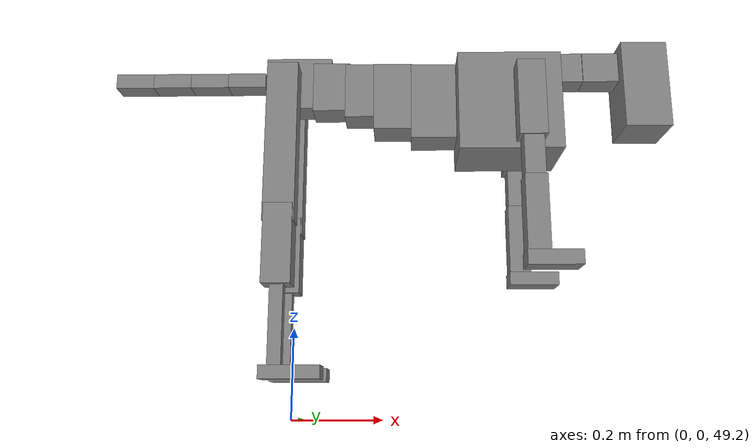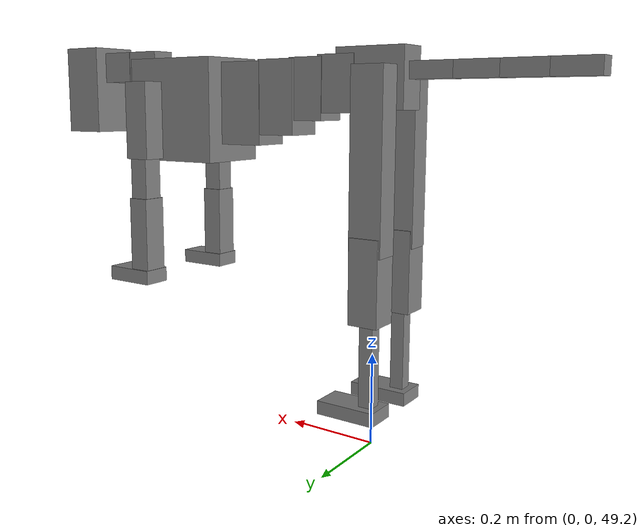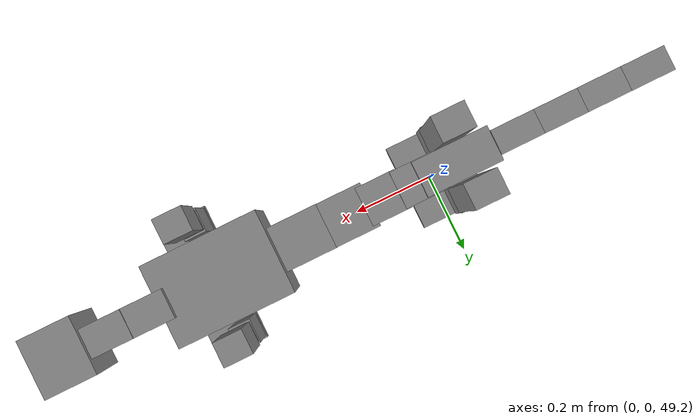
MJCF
<mujoco model="dog">

    <default>
        <joint armature="0.02" stiffness="1" damping="0.2" limited="true"/>
        <geom condim="3" friction="1 0.05 0.05" margin="0.01"/>
        <motor ctrllimited="true" ctrlrange="-1.0 1.0" forcelimited="true" gear="50"/>
    </default>

    <compiler inertiafromgeom="true" angle="radian"/>

    <option timestep="0.016" iterations="50" tolerance="1e-10" solver="Newton" jacobian="dense" cone="pyramidal"/>

    <size nconmax="20000" njmax="60000" nstack="5000000"/>
    <visual>
        <map force="0.1" zfar="30"/>
        <rgba haze="0.15 0.25 0.35 1"/>
        <quality shadowsize="2048"/>
        <global offwidth="800" offheight="800"/>
    </visual>

    <asset>
        <texture type="skybox" builtin="gradient" rgb1="0.3 0.5 0.7" rgb2="0 0 0" width="512" height="512"/>
        <texture name="texplane" type="2d" builtin="checker" rgb1=".2 .3 .4" rgb2=".1 0.15 0.2" width="512" height="512"
                 mark="cross" markrgb=".8 .8 .8"/>
        <texture name="texgeom" type="cube" builtin="flat" mark="cross" width="127" height="1278" rgb1="0.8 0.6 0.4"
                 rgb2="0.8 0.6 0.4" markrgb="1 1 1" random="0.01"/>

        <material name="matplane" reflectance="0.3" texture="texplane" texrepeat="1 1" texuniform="true"/>
        <material name="matgeom" texture="texgeom" texuniform="true" rgba="0.8 0.6 .4 1"/>
    </asset>

    <worldbody>
        <geom name="floor" pos="0 0 0" size="0 0 .25" type="plane" material="matplane" condim="3"/>

        <light directional="false" diffuse=".2 .2 .2" specular="0 0 0" pos="0 0 5" dir="0 0 -1" castshadow="false"/>
        <light mode="targetbodycom" target="torso" directional="false" diffuse=".8 .8 .8" specular="0.3 0.3 0.3"
               pos="0 0 4.0" dir="0 0 -1"/>

        <body name="root" pos="0 0 50">
            <freejoint name="root_1"/>
            <geom type="box" pos="0 0 -0.02" size="0.0774  0.0358  0.063" density="2030"/>

            <body name="spine1" pos="0.054 0 0">
                <joint name="spine1_y" axis="0 1 0" range="0 0.7" limited="true"/>
                <geom type="box" pos="0.02375 0 -0.03" size="0.04375  0.0375  0.05985" density="2030"/>

                <body name="spine2" pos="0.0612 0 0">
                    <joint name="spine2_y" axis="0 1 0" range="-0.15 0.15" limited="true"/>
                    <geom type="box" pos="0.03555  0  -0.04" size="0.04055  0.039  0.06615" density="2030"/>

                    <body name="spine3" pos="0.0730 0 0">
                        <joint name="spine3_y" axis="0 1 0" range="-0.15 0.15" limited="true"/>
                        <geom type="box" pos="0.03555  0  -0.057" size="0.04555  0.0445  0.081" density="2030"/>

                        <body name="spine4" pos="0.0780 0 0">
                            <joint name="spine4_y" axis="0 1 0" range="-0.15 0.15" limited="true"/>
                            <geom type="box" pos="0.05265  0  -0.07" size="0.05265  0.045  0.09135" density="2030"/>

                            <body name="torso" pos="0.1082 0 0">
                                <joint name="torso_y" axis="0 1 0" range="-0.15 0.15" limited="true"/>
                                <geom type="box" pos="0.11925  0  -0.085" size="0.11925  0.085  0.11745"
                                      density="2030"/>

                                <body name="neck1" pos="0.2160  0   0.0180">
                                    <joint name="neck1_y" axis="0 1 0" range="-1.2  -1" limited="true"/>
                                    <geom type="box" pos="0.0423  0  0" size="0.0423  0.03  0.036" density="2325"/>

                                    <body name="neck2" pos="0.0853  0  0">
                                        <joint name="neck2_y" axis="0 1 0" range="0.1  0" limited="true"/>
                                        <geom type="box" pos="0.0423  0  0" size="0.0423  0.03  0.036" density="2325"/>

                                        <body name="head" pos="0.0853  0  0">
                                            <joint name="head_y" axis="0 1 0" range="-0.3  -0.2" limited="true"/>
                                            <geom type="box" pos="0.0531  0  -0.055" size="0.0531  0.06  0.1044"
                                                  density="4030"/>

                                        </body>
                                    </body>
                                </body>

                                <body name="front_shoulder" pos="0.156  0   -0.0480">
                                    <joint name="front_shoulder_y" axis="0 1 0" range="-1 1.5" limited="true"/>
                                    <geom type="box" pos="0 0.13 -0.0605" size="0.0309  0.0264  0.0872" density="1158"/>
                                    <geom type="box" pos="0 -0.13 -0.0605" size="0.0309  0.0264  0.0872"
                                          density="1158"/>

                                    <body name="front_elbow" pos="0  0  -0.1210">
                                        <joint name="front_elbow_y" axis="0 1 0" range="-2 0" limited="true"/>
                                        <geom type="box" pos="0 0.13 -0.0652" size="0.0225  0.0230  0.0652"
                                              density="1081"/>
                                        <geom type="box" pos="0 -0.13 -0.0652" size="0.0225  0.0230  0.0652"
                                              density="1081"/>

                                        <body name="front_wrist" pos="0  0  -0.1304">
                                            <joint name="front_wrist_y" axis="0 1 0" range="-0.2 0" limited="true"/>
                                            <geom type="box" pos="0 0.13 -0.0841" size="0.0249  0.0277  0.0972"
                                                  density="1664"/>
                                            <geom type="box" pos="0 -0.13 -0.0841" size="0.0249  0.0277  0.0972"
                                                  density="1664"/>

                                            <body name="front_finger_end" pos="0  0  -0.1681">
                                                <joint name="front_finger_y" axis="0 1 0" range="-0.4 1"
                                                       limited="true"/>
                                                <geom type="box" pos="0.0321  0.13  -0.0012"
                                                      size="0.0588  0.0321  0.0162" density="1515"/>
                                                <geom type="box" pos="0.0321  -0.13  -0.0012"
                                                      size="0.0588  0.0321  0.0162" density="1515"/>

                                            </body>

                                        </body>
                                    </body>
                                </body>

                            </body>
                        </body>
                    </body>
                </body>
            </body>

            <body name="back_hip" pos="-0.03 0 -0.018">
                <joint name="back_hip_y" axis="0 1 0" range="-1.5 0.3" limited="true"/>
                <geom type="box" pos="0 0.07 -0.1651" size="0.0356  0.0279  0.1879" density="1154"/>
                <geom type="box" pos="0 -0.07 -0.1651" size="0.0356  0.0279  0.1879" density="1154"/>

                <body name="back_knee" pos="0  0  -0.3302">
                    <joint name="back_knee_y" axis="0 1 0" range="0 2.8" limited="true"/>
                    <geom type="box" pos="0 0.07 -0.0740" size="0.0325  0.0321  0.0895" density="1227"/>
                    <geom type="box" pos="0 -0.07 -0.0740" size="0.0325  0.0321  0.0895" density="1227"/>

                    <body name="back_ankle" pos="0  0  -0.1480">
                        <joint name="back_ankle_y" axis="0 1 0" range="-2.2 0" limited="true"/>
                        <geom type="box" pos="0 0.07 -0.1023" size="0.0150  0.0150  0.1135" density="1284"/>
                        <geom type="box" pos="0 -0.07 -0.1023" size="0.0150  0.0150  0.1135" density="1284"/>

                        <body name="back_toe_end" pos="0  0  -0.2046">
                            <joint name="back_toe_y" axis="0 1 0" range="-0.4 1" limited="true"/>
                            <geom type="box" pos="0.0357  0.07  0.0005" size="0.0654  0.0357  0.0145" density="1515"/>
                            <geom type="box" pos="0.0357  -0.07  0.0005" size="0.0654  0.0357  0.0145" density="1515"/>

                        </body>
                    </body>
                </body>
            </body>

            <body name="tail1" pos="-0.074 0 -0.006">
                <joint name="tail1_y" axis="0 1 0" range="-0.2 0.2" limited="true"/>
                <geom type="box" pos="-0.0536  0  0" size="0.045  0.025  0.0175" density="1587"/>

                <body name="tail2" pos="-0.09 0 0">
                    <joint name="tail2_y" axis="0 1 0" range="-0.2 0.2" limited="true"/>
                    <geom type="box" pos="-0.0536  0  0" size="0.045  0.025  0.0175" density="1587"/>

                    <body name="tail3" pos="-0.09 0 0">
                        <joint name="tail3_y" axis="0 1 0" range="-0.2 0.2" limited="true"/>
                        <geom type="box" pos="-0.0536  0  0" size="0.045  0.025  0.0175" density="1587"/>

                        <body name="tail4" pos="-0.09 0 0">
                            <joint name="tail4_y" axis="0 1 0" range="-0.2 0.2" limited="true"/>
                            <geom type="box" pos="-0.0536  0  0" size="0.045  0.025  0.0175" density="1587"/>

                        </body>
                    </body>
                </body>
            </body>
        </body>
    </worldbody>

    <actuator>
        <motor joint="spine1_y" forcerange="-150 150     "/>
        <motor joint="spine2_y" forcerange="-150 150     "/>
        <motor joint="spine3_y" forcerange="-150 150     "/>
        <motor joint="spine4_y" forcerange="-150 150     "/>
        <motor joint="torso_y" forcerange="-150 150     "/>
        <motor joint="neck1_y" forcerange="-100 100       "/>
        <motor joint="neck2_y" forcerange="-100 100       "/>
        <motor joint="head_y" forcerange="-150 150       "/>
        <motor joint="front_shoulder_y" forcerange="-161.87 114.32"/>
        <motor joint="front_elbow_y" forcerange="-112.85 154.12"/>
        <motor joint="front_wrist_y" forcerange="-88.97 132.72"/>
        <motor joint="front_finger_y" forcerange="-79.98 51.02"/>
        <motor joint="back_hip_y" forcerange="-314.60 257.52"/>
        <motor joint="back_knee_y" forcerange="-268.75 397.63"/>
        <motor joint="back_angle_y" forcerange="-75.28 64.56"/>
        <motor joint="back_toe_y" forcerange="-139.72 65.63"/>
        <motor joint="tail1_y" forcerange="-50 50     "/>
        <motor joint="tail2_y" forcerange="-50 50     "/>
        <motor joint="tail3_y" forcerange="-50 50     "/>
        <motor joint="tail4_y" forcerange="-50 50     "/>
    </actuator>
</mujoco>
